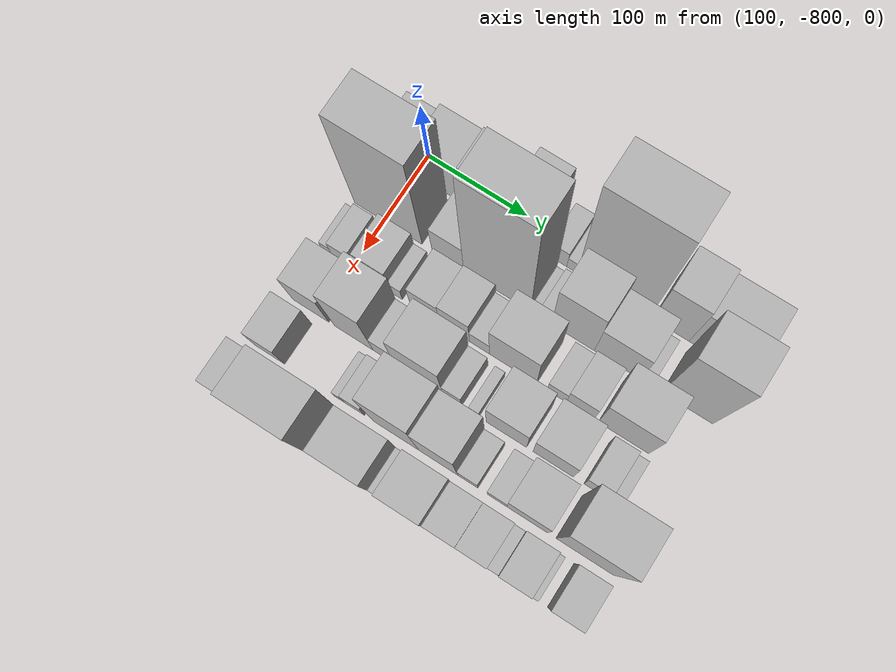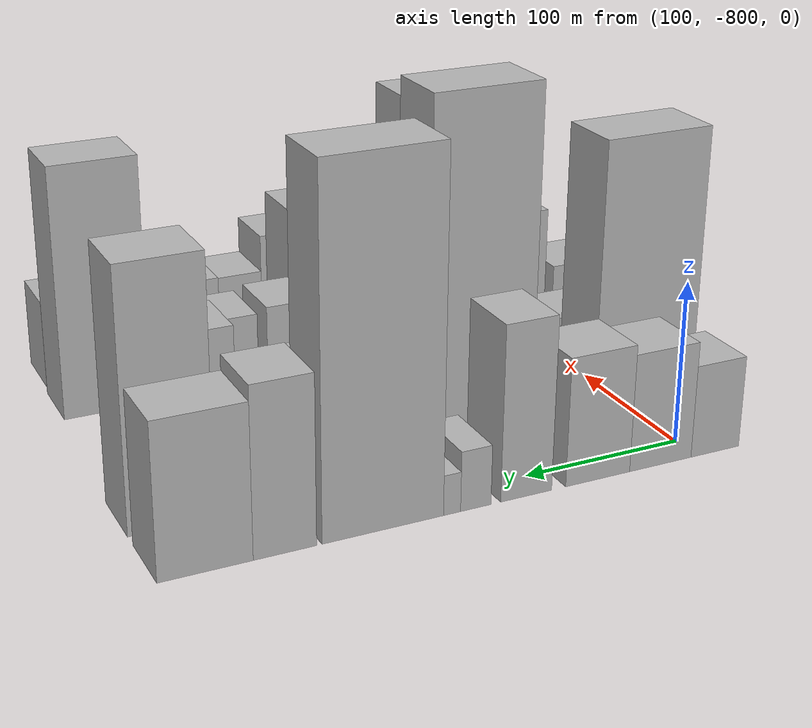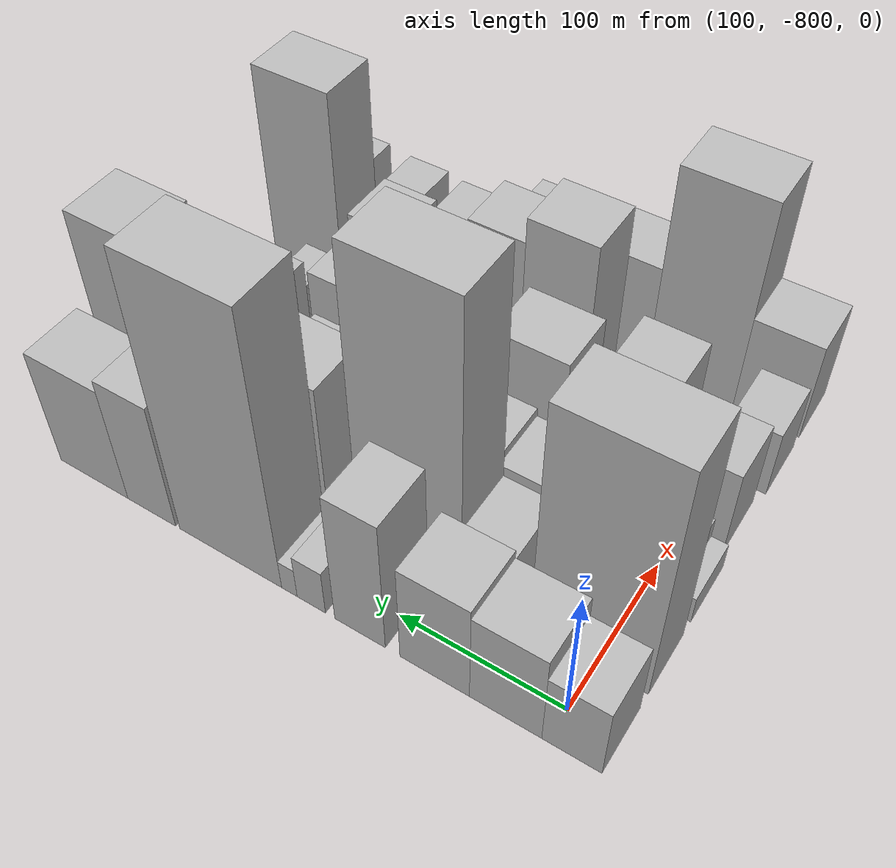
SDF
<sdf version="1.6">
 <world name="default">
  <model name="building_1">
   <static>1</static>
   <pose>100.0000 -813.4365 0 0.000000 0.000000 0.000000</pose>
   <link name="link">
    <pose>0 0 28.50 0 0 0</pose>
    <collision name="collision"><geometry><box><size>40.0000 33.1270 57.0000</size></box></geometry></collision>
    <visual name="visual">
     <cast_shadows>0</cast_shadows>
     <geometry><box><size>40.0000 33.1270 57.0000</size></box></geometry>
     <material>
      <script>
       <uri>model://HANNAS_wall/materials/scripts</uri>
       <uri>model://HANNAS_wall/materials/textures</uri>
       <name>vrc/HANNAS_wall</name>
      </script>
     </material>
    </visual>
   </link>
  </model>
  <model name="building_2">
   <static>1</static>
   <pose>100.0000 -776.1654 0 0.000000 0.000000 0.000000</pose>
   <link name="link">
    <pose>0 0 36.00 0 0 0</pose>
    <collision name="collision"><geometry><box><size>40.0000 41.4152 72.0000</size></box></geometry></collision>
    <visual name="visual">
     <cast_shadows>0</cast_shadows>
     <geometry><box><size>40.0000 41.4152 72.0000</size></box></geometry>
     <material>
      <script>
       <uri>model://HANNAS_wall/materials/scripts</uri>
       <uri>model://HANNAS_wall/materials/textures</uri>
       <name>vrc/HANNAS_wall</name>
      </script>
     </material>
    </visual>
   </link>
  </model>
  <model name="building_3">
   <static>1</static>
   <pose>100.0000 -734.5944 0 0.000000 0.000000 0.000000</pose>
   <link name="link">
    <pose>0 0 39.00 0 0 0</pose>
    <collision name="collision"><geometry><box><size>40.0000 41.7268 78.0000</size></box></geometry></collision>
    <visual name="visual">
     <cast_shadows>0</cast_shadows>
     <geometry><box><size>40.0000 41.7268 78.0000</size></box></geometry>
     <material>
      <script>
       <uri>model://HANNAS_wall/materials/scripts</uri>
       <uri>model://HANNAS_wall/materials/textures</uri>
       <name>vrc/HANNAS_wall</name>
      </script>
     </material>
    </visual>
   </link>
  </model>
  <model name="building_4">
   <static>1</static>
   <pose>100.0000 -688.7372 0 0.000000 0.000000 0.000000</pose>
   <link name="link">
    <pose>0 0 52.50 0 0 0</pose>
    <collision name="collision"><geometry><box><size>40.0000 31.9876 105.0000</size></box></geometry></collision>
    <visual name="visual">
     <cast_shadows>0</cast_shadows>
     <geometry><box><size>40.0000 31.9876 105.0000</size></box></geometry>
     <material>
      <script>
       <uri>model://HANNAS_wall/materials/scripts</uri>
       <uri>model://HANNAS_wall/materials/textures</uri>
       <name>vrc/HANNAS_wall</name>
      </script>
     </material>
    </visual>
   </link>
  </model>
  <model name="building_5">
   <static>1</static>
   <pose>100.0000 -657.4746 0 0.000000 0.000000 0.000000</pose>
   <link name="link">
    <pose>0 0 18.00 0 0 0</pose>
    <collision name="collision"><geometry><box><size>40.0000 18.5376 36.0000</size></box></geometry></collision>
    <visual name="visual">
     <cast_shadows>0</cast_shadows>
     <geometry><box><size>40.0000 18.5376 36.0000</size></box></geometry>
     <material>
      <script>
       <uri>model://HANNAS_wall/materials/scripts</uri>
       <uri>model://HANNAS_wall/materials/textures</uri>
       <name>vrc/HANNAS_wall</name>
      </script>
     </material>
    </visual>
   </link>
  </model>
  <model name="building_6">
   <static>1</static>
   <pose>100.0000 -643.0479 0 0.000000 0.000000 0.000000</pose>
   <link name="link">
    <pose>0 0 12.00 0 0 0</pose>
    <collision name="collision"><geometry><box><size>40.0000 10.3160 24.0000</size></box></geometry></collision>
    <visual name="visual">
     <cast_shadows>0</cast_shadows>
     <geometry><box><size>40.0000 10.3160 24.0000</size></box></geometry>
     <material>
      <script>
       <uri>model://HANNAS_wall/materials/scripts</uri>
       <uri>model://HANNAS_wall/materials/textures</uri>
       <name>vrc/HANNAS_wall</name>
      </script>
     </material>
    </visual>
   </link>
  </model>
  <model name="building_7">
   <static>1</static>
   <pose>100.0000 -602.5370 0 0.000000 0.000000 0.000000</pose>
   <link name="link">
    <pose>0 0 105.00 0 0 0</pose>
    <collision name="collision"><geometry><box><size>40.0000 70.7057 210.0000</size></box></geometry></collision>
    <visual name="visual">
     <cast_shadows>0</cast_shadows>
     <geometry><box><size>40.0000 70.7057 210.0000</size></box></geometry>
     <material>
      <script>
       <uri>model://HANNAS_wall/materials/scripts</uri>
       <uri>model://HANNAS_wall/materials/textures</uri>
       <name>vrc/HANNAS_wall</name>
      </script>
     </material>
    </visual>
   </link>
  </model>
  <model name="building_8">
   <static>1</static>
   <pose>100.0000 -546.6239 0 0.000000 0.000000 0.000000</pose>
   <link name="link">
    <pose>0 0 49.50 0 0 0</pose>
    <collision name="collision"><geometry><box><size>40.0000 35.1205 99.0000</size></box></geometry></collision>
    <visual name="visual">
     <cast_shadows>0</cast_shadows>
     <geometry><box><size>40.0000 35.1205 99.0000</size></box></geometry>
     <material>
      <script>
       <uri>model://HANNAS_wall/materials/scripts</uri>
       <uri>model://HANNAS_wall/materials/textures</uri>
       <name>vrc/HANNAS_wall</name>
      </script>
     </material>
    </visual>
   </link>
  </model>
  <model name="building_9">
   <static>1</static>
   <pose>100.0000 -503.3748 0 0.000000 0.000000 0.000000</pose>
   <link name="link">
    <pose>0 0 45.00 0 0 0</pose>
    <collision name="collision"><geometry><box><size>40.0000 51.3777 90.0000</size></box></geometry></collision>
    <visual name="visual">
     <cast_shadows>0</cast_shadows>
     <geometry><box><size>40.0000 51.3777 90.0000</size></box></geometry>
     <material>
      <script>
       <uri>model://HANNAS_wall/materials/scripts</uri>
       <uri>model://HANNAS_wall/materials/textures</uri>
       <name>vrc/HANNAS_wall</name>
      </script>
     </material>
    </visual>
   </link>
  </model>
  <model name="building_47">
   <static>1</static>
   <pose>149.0000 -795.7244 0 0.000000 0.000000 0.000000</pose>
   <link name="link">
    <pose>0 0 90.00 0 0 0</pose>
    <collision name="collision"><geometry><box><size>40.0000 68.5512 180.0000</size></box></geometry></collision>
    <visual name="visual">
     <cast_shadows>0</cast_shadows>
     <geometry><box><size>40.0000 68.5512 180.0000</size></box></geometry>
     <material>
      <script>
       <uri>model://HANNAS_wall/materials/scripts</uri>
       <uri>model://HANNAS_wall/materials/textures</uri>
       <name>vrc/HANNAS_wall</name>
      </script>
     </material>
    </visual>
   </link>
  </model>
  <model name="building_48">
   <static>1</static>
   <pose>149.0000 -735.6242 0 0.000000 0.000000 0.000000</pose>
   <link name="link">
    <pose>0 0 28.50 0 0 0</pose>
    <collision name="collision"><geometry><box><size>40.0000 31.6492 57.0000</size></box></geometry></collision>
    <visual name="visual">
     <cast_shadows>0</cast_shadows>
     <geometry><box><size>40.0000 31.6492 57.0000</size></box></geometry>
     <material>
      <script>
       <uri>model://HANNAS_wall/materials/scripts</uri>
       <uri>model://HANNAS_wall/materials/textures</uri>
       <name>vrc/HANNAS_wall</name>
      </script>
     </material>
    </visual>
   </link>
  </model>
  <model name="building_49">
   <static>1</static>
   <pose>149.0000 -686.6204 0 0.000000 0.000000 0.000000</pose>
   <link name="link">
    <pose>0 0 109.50 0 0 0</pose>
    <collision name="collision"><geometry><box><size>40.0000 66.3585 219.0000</size></box></geometry></collision>
    <visual name="visual">
     <cast_shadows>0</cast_shadows>
     <geometry><box><size>40.0000 66.3585 219.0000</size></box></geometry>
     <material>
      <script>
       <uri>model://HANNAS_wall/materials/scripts</uri>
       <uri>model://HANNAS_wall/materials/textures</uri>
       <name>vrc/HANNAS_wall</name>
      </script>
     </material>
    </visual>
   </link>
  </model>
  <model name="building_50">
   <static>1</static>
   <pose>149.0000 -649.4262 0 0.000000 0.000000 0.000000</pose>
   <link name="link">
    <pose>0 0 9.00 0 0 0</pose>
    <collision name="collision"><geometry><box><size>40.0000 8.0300 18.0000</size></box></geometry></collision>
    <visual name="visual">
     <cast_shadows>0</cast_shadows>
     <geometry><box><size>40.0000 8.0300 18.0000</size></box></geometry>
     <material>
      <script>
       <uri>model://HANNAS_wall/materials/scripts</uri>
       <uri>model://HANNAS_wall/materials/textures</uri>
       <name>vrc/HANNAS_wall</name>
      </script>
     </material>
    </visual>
   </link>
  </model>
  <model name="building_51">
   <static>1</static>
   <pose>149.0000 -639.1264 0 0.000000 0.000000 0.000000</pose>
   <link name="link">
    <pose>0 0 13.50 0 0 0</pose>
    <collision name="collision"><geometry><box><size>40.0000 12.5696 27.0000</size></box></geometry></collision>
    <visual name="visual">
     <cast_shadows>0</cast_shadows>
     <geometry><box><size>40.0000 12.5696 27.0000</size></box></geometry>
     <material>
      <script>
       <uri>model://HANNAS_wall/materials/scripts</uri>
       <uri>model://HANNAS_wall/materials/textures</uri>
       <name>vrc/HANNAS_wall</name>
      </script>
     </material>
    </visual>
   </link>
  </model>
  <model name="building_52">
   <static>1</static>
   <pose>149.0000 -611.9368 0 0.000000 0.000000 0.000000</pose>
   <link name="link">
    <pose>0 0 54.00 0 0 0</pose>
    <collision name="collision"><geometry><box><size>40.0000 41.8096 108.0000</size></box></geometry></collision>
    <visual name="visual">
     <cast_shadows>0</cast_shadows>
     <geometry><box><size>40.0000 41.8096 108.0000</size></box></geometry>
     <material>
      <script>
       <uri>model://HANNAS_wall/materials/scripts</uri>
       <uri>model://HANNAS_wall/materials/textures</uri>
       <name>vrc/HANNAS_wall</name>
      </script>
     </material>
    </visual>
   </link>
  </model>
  <model name="building_53">
   <static>1</static>
   <pose>149.0000 -568.7562 0 0.000000 0.000000 0.000000</pose>
   <link name="link">
    <pose>0 0 37.50 0 0 0</pose>
    <collision name="collision"><geometry><box><size>40.0000 44.5515 75.0000</size></box></geometry></collision>
    <visual name="visual">
     <cast_shadows>0</cast_shadows>
     <geometry><box><size>40.0000 44.5515 75.0000</size></box></geometry>
     <material>
      <script>
       <uri>model://HANNAS_wall/materials/scripts</uri>
       <uri>model://HANNAS_wall/materials/textures</uri>
       <name>vrc/HANNAS_wall</name>
      </script>
     </material>
    </visual>
   </link>
  </model>
  <model name="building_54">
   <static>1</static>
   <pose>149.0000 -541.3302 0 0.000000 0.000000 0.000000</pose>
   <link name="link">
    <pose>0 0 10.50 0 0 0</pose>
    <collision name="collision"><geometry><box><size>40.0000 10.3006 21.0000</size></box></geometry></collision>
    <visual name="visual">
     <cast_shadows>0</cast_shadows>
     <geometry><box><size>40.0000 10.3006 21.0000</size></box></geometry>
     <material>
      <script>
       <uri>model://HANNAS_wall/materials/scripts</uri>
       <uri>model://HANNAS_wall/materials/textures</uri>
       <name>vrc/HANNAS_wall</name>
      </script>
     </material>
    </visual>
   </link>
  </model>
  <model name="building_55">
   <static>1</static>
   <pose>149.0000 -501.8679 0 0.000000 0.000000 0.000000</pose>
   <link name="link">
    <pose>0 0 76.50 0 0 0</pose>
    <collision name="collision"><geometry><box><size>40.0000 48.6239 153.0000</size></box></geometry></collision>
    <visual name="visual">
     <cast_shadows>0</cast_shadows>
     <geometry><box><size>40.0000 48.6239 153.0000</size></box></geometry>
     <material>
      <script>
       <uri>model://HANNAS_wall/materials/scripts</uri>
       <uri>model://HANNAS_wall/materials/textures</uri>
       <name>vrc/HANNAS_wall</name>
      </script>
     </material>
    </visual>
   </link>
  </model>
  <model name="building_97">
   <static>1</static>
   <pose>198.0000 -824.8740 0 0.000000 0.000000 0.000000</pose>
   <link name="link">
    <pose>0 0 10.50 0 0 0</pose>
    <collision name="collision"><geometry><box><size>40.0000 10.2519 21.0000</size></box></geometry></collision>
    <visual name="visual">
     <cast_shadows>0</cast_shadows>
     <geometry><box><size>40.0000 10.2519 21.0000</size></box></geometry>
     <material>
      <script>
       <uri>model://HANNAS_wall/materials/scripts</uri>
       <uri>model://HANNAS_wall/materials/textures</uri>
       <name>vrc/HANNAS_wall</name>
      </script>
     </material>
    </visual>
   </link>
  </model>
  <model name="building_98">
   <static>1</static>
   <pose>198.0000 -810.1202 0 0.000000 0.000000 0.000000</pose>
   <link name="link">
    <pose>0 0 18.00 0 0 0</pose>
    <collision name="collision"><geometry><box><size>40.0000 19.2558 36.0000</size></box></geometry></collision>
    <visual name="visual">
     <cast_shadows>0</cast_shadows>
     <geometry><box><size>40.0000 19.2558 36.0000</size></box></geometry>
     <material>
      <script>
       <uri>model://HANNAS_wall/materials/scripts</uri>
       <uri>model://HANNAS_wall/materials/textures</uri>
       <name>vrc/HANNAS_wall</name>
      </script>
     </material>
    </visual>
   </link>
  </model>
  <model name="building_99">
   <static>1</static>
   <pose>198.0000 -796.7460 0 0.000000 0.000000 0.000000</pose>
   <link name="link">
    <pose>0 0 9.00 0 0 0</pose>
    <collision name="collision"><geometry><box><size>40.0000 7.4927 18.0000</size></box></geometry></collision>
    <visual name="visual">
     <cast_shadows>0</cast_shadows>
     <geometry><box><size>40.0000 7.4927 18.0000</size></box></geometry>
     <material>
      <script>
       <uri>model://HANNAS_wall/materials/scripts</uri>
       <uri>model://HANNAS_wall/materials/textures</uri>
       <name>vrc/HANNAS_wall</name>
      </script>
     </material>
    </visual>
   </link>
  </model>
  <model name="building_100">
   <static>1</static>
   <pose>198.0000 -777.3658 0 0.000000 0.000000 0.000000</pose>
   <link name="link">
    <pose>0 0 27.00 0 0 0</pose>
    <collision name="collision"><geometry><box><size>40.0000 31.2675 54.0000</size></box></geometry></collision>
    <visual name="visual">
     <cast_shadows>0</cast_shadows>
     <geometry><box><size>40.0000 31.2675 54.0000</size></box></geometry>
     <material>
      <script>
       <uri>model://HANNAS_wall/materials/scripts</uri>
       <uri>model://HANNAS_wall/materials/textures</uri>
       <name>vrc/HANNAS_wall</name>
      </script>
     </material>
    </visual>
   </link>
  </model>
  <model name="building_101">
   <static>1</static>
   <pose>198.0000 -755.3200 0 0.000000 0.000000 0.000000</pose>
   <link name="link">
    <pose>0 0 13.50 0 0 0</pose>
    <collision name="collision"><geometry><box><size>40.0000 12.8241 27.0000</size></box></geometry></collision>
    <visual name="visual">
     <cast_shadows>0</cast_shadows>
     <geometry><box><size>40.0000 12.8241 27.0000</size></box></geometry>
     <material>
      <script>
       <uri>model://HANNAS_wall/materials/scripts</uri>
       <uri>model://HANNAS_wall/materials/textures</uri>
       <name>vrc/HANNAS_wall</name>
      </script>
     </material>
    </visual>
   </link>
  </model>
  <model name="building_102">
   <static>1</static>
   <pose>198.0000 -726.4056 0 0.000000 0.000000 0.000000</pose>
   <link name="link">
    <pose>0 0 25.50 0 0 0</pose>
    <collision name="collision"><geometry><box><size>40.0000 29.0049 51.0000</size></box></geometry></collision>
    <visual name="visual">
     <cast_shadows>0</cast_shadows>
     <geometry><box><size>40.0000 29.0049 51.0000</size></box></geometry>
     <material>
      <script>
       <uri>model://HANNAS_wall/materials/scripts</uri>
       <uri>model://HANNAS_wall/materials/textures</uri>
       <name>vrc/HANNAS_wall</name>
      </script>
     </material>
    </visual>
   </link>
  </model>
  <model name="building_103">
   <static>1</static>
   <pose>198.0000 -697.0899 0 0.000000 0.000000 0.000000</pose>
   <link name="link">
    <pose>0 0 28.50 0 0 0</pose>
    <collision name="collision"><geometry><box><size>40.0000 29.6264 57.0000</size></box></geometry></collision>
    <visual name="visual">
     <cast_shadows>0</cast_shadows>
     <geometry><box><size>40.0000 29.6264 57.0000</size></box></geometry>
     <material>
      <script>
       <uri>model://HANNAS_wall/materials/scripts</uri>
       <uri>model://HANNAS_wall/materials/textures</uri>
       <name>vrc/HANNAS_wall</name>
      </script>
     </material>
    </visual>
   </link>
  </model>
  <model name="building_104">
   <static>1</static>
   <pose>198.0000 -672.5889 0 0.000000 0.000000 0.000000</pose>
   <link name="link">
    <pose>0 0 16.50 0 0 0</pose>
    <collision name="collision"><geometry><box><size>40.0000 19.3755 33.0000</size></box></geometry></collision>
    <visual name="visual">
     <cast_shadows>0</cast_shadows>
     <geometry><box><size>40.0000 19.3755 33.0000</size></box></geometry>
     <material>
      <script>
       <uri>model://HANNAS_wall/materials/scripts</uri>
       <uri>model://HANNAS_wall/materials/textures</uri>
       <name>vrc/HANNAS_wall</name>
      </script>
     </material>
    </visual>
   </link>
  </model>
  <model name="building_105">
   <static>1</static>
   <pose>198.0000 -639.7489 0 0.000000 0.000000 0.000000</pose>
   <link name="link">
    <pose>0 0 42.00 0 0 0</pose>
    <collision name="collision"><geometry><box><size>40.0000 46.3046 84.0000</size></box></geometry></collision>
    <visual name="visual">
     <cast_shadows>0</cast_shadows>
     <geometry><box><size>40.0000 46.3046 84.0000</size></box></geometry>
     <material>
      <script>
       <uri>model://HANNAS_wall/materials/scripts</uri>
       <uri>model://HANNAS_wall/materials/textures</uri>
       <name>vrc/HANNAS_wall</name>
      </script>
     </material>
    </visual>
   </link>
  </model>
  <model name="building_106">
   <static>1</static>
   <pose>198.0000 -597.2656 0 0.000000 0.000000 0.000000</pose>
   <link name="link">
    <pose>0 0 16.50 0 0 0</pose>
    <collision name="collision"><geometry><box><size>40.0000 18.6619 33.0000</size></box></geometry></collision>
    <visual name="visual">
     <cast_shadows>0</cast_shadows>
     <geometry><box><size>40.0000 18.6619 33.0000</size></box></geometry>
     <material>
      <script>
       <uri>model://HANNAS_wall/materials/scripts</uri>
       <uri>model://HANNAS_wall/materials/textures</uri>
       <name>vrc/HANNAS_wall</name>
      </script>
     </material>
    </visual>
   </link>
  </model>
  <model name="building_107">
   <static>1</static>
   <pose>198.0000 -574.6340 0 0.000000 0.000000 0.000000</pose>
   <link name="link">
    <pose>0 0 24.00 0 0 0</pose>
    <collision name="collision"><geometry><box><size>40.0000 26.6013 48.0000</size></box></geometry></collision>
    <visual name="visual">
     <cast_shadows>0</cast_shadows>
     <geometry><box><size>40.0000 26.6013 48.0000</size></box></geometry>
     <material>
      <script>
       <uri>model://HANNAS_wall/materials/scripts</uri>
       <uri>model://HANNAS_wall/materials/textures</uri>
       <name>vrc/HANNAS_wall</name>
      </script>
     </material>
    </visual>
   </link>
  </model>
  <model name="building_108">
   <static>1</static>
   <pose>198.0000 -533.3000 0 0.000000 0.000000 0.000000</pose>
   <link name="link">
    <pose>0 0 43.50 0 0 0</pose>
    <collision name="collision"><geometry><box><size>40.0000 48.0668 87.0000</size></box></geometry></collision>
    <visual name="visual">
     <cast_shadows>0</cast_shadows>
     <geometry><box><size>40.0000 48.0668 87.0000</size></box></geometry>
     <material>
      <script>
       <uri>model://HANNAS_wall/materials/scripts</uri>
       <uri>model://HANNAS_wall/materials/textures</uri>
       <name>vrc/HANNAS_wall</name>
      </script>
     </material>
    </visual>
   </link>
  </model>
  <model name="building_149">
   <static>1</static>
   <pose>247.0000 -808.0110 0 0.000000 0.000000 0.000000</pose>
   <link name="link">
    <pose>0 0 33.00 0 0 0</pose>
    <collision name="collision"><geometry><box><size>40.0000 35.9780 66.0000</size></box></geometry></collision>
    <visual name="visual">
     <cast_shadows>0</cast_shadows>
     <geometry><box><size>40.0000 35.9780 66.0000</size></box></geometry>
     <material>
      <script>
       <uri>model://HANNAS_wall/materials/scripts</uri>
       <uri>model://HANNAS_wall/materials/textures</uri>
       <name>vrc/HANNAS_wall</name>
      </script>
     </material>
    </visual>
   </link>
  </model>
  <model name="building_150">
   <static>1</static>
   <pose>247.0000 -764.7420 0 0.000000 0.000000 0.000000</pose>
   <link name="link">
    <pose>0 0 52.50 0 0 0</pose>
    <collision name="collision"><geometry><box><size>40.0000 38.5599 105.0000</size></box></geometry></collision>
    <visual name="visual">
     <cast_shadows>0</cast_shadows>
     <geometry><box><size>40.0000 38.5599 105.0000</size></box></geometry>
     <material>
      <script>
       <uri>model://HANNAS_wall/materials/scripts</uri>
       <uri>model://HANNAS_wall/materials/textures</uri>
       <name>vrc/HANNAS_wall</name>
      </script>
     </material>
    </visual>
   </link>
  </model>
  <model name="building_151">
   <static>1</static>
   <pose>247.0000 -734.9108 0 0.000000 0.000000 0.000000</pose>
   <link name="link">
    <pose>0 0 21.00 0 0 0</pose>
    <collision name="collision"><geometry><box><size>40.0000 21.1025 42.0000</size></box></geometry></collision>
    <visual name="visual">
     <cast_shadows>0</cast_shadows>
     <geometry><box><size>40.0000 21.1025 42.0000</size></box></geometry>
     <material>
      <script>
       <uri>model://HANNAS_wall/materials/scripts</uri>
       <uri>model://HANNAS_wall/materials/textures</uri>
       <name>vrc/HANNAS_wall</name>
      </script>
     </material>
    </visual>
   </link>
  </model>
  <model name="building_152">
   <static>1</static>
   <pose>247.0000 -700.5825 0 0.000000 0.000000 0.000000</pose>
   <link name="link">
    <pose>0 0 45.00 0 0 0</pose>
    <collision name="collision"><geometry><box><size>40.0000 47.5540 90.0000</size></box></geometry></collision>
    <visual name="visual">
     <cast_shadows>0</cast_shadows>
     <geometry><box><size>40.0000 47.5540 90.0000</size></box></geometry>
     <material>
      <script>
       <uri>model://HANNAS_wall/materials/scripts</uri>
       <uri>model://HANNAS_wall/materials/textures</uri>
       <name>vrc/HANNAS_wall</name>
      </script>
     </material>
    </visual>
   </link>
  </model>
  <model name="building_153">
   <static>1</static>
   <pose>247.0000 -667.6873 0 0.000000 0.000000 0.000000</pose>
   <link name="link">
    <pose>0 0 18.00 0 0 0</pose>
    <collision name="collision"><geometry><box><size>40.0000 18.2366 36.0000</size></box></geometry></collision>
    <visual name="visual">
     <cast_shadows>0</cast_shadows>
     <geometry><box><size>40.0000 18.2366 36.0000</size></box></geometry>
     <material>
      <script>
       <uri>model://HANNAS_wall/materials/scripts</uri>
       <uri>model://HANNAS_wall/materials/textures</uri>
       <name>vrc/HANNAS_wall</name>
      </script>
     </material>
    </visual>
   </link>
  </model>
  <model name="building_154">
   <static>1</static>
   <pose>247.0000 -646.6840 0 0.000000 0.000000 0.000000</pose>
   <link name="link">
    <pose>0 0 10.50 0 0 0</pose>
    <collision name="collision"><geometry><box><size>40.0000 9.7700 21.0000</size></box></geometry></collision>
    <visual name="visual">
     <cast_shadows>0</cast_shadows>
     <geometry><box><size>40.0000 9.7700 21.0000</size></box></geometry>
     <material>
      <script>
       <uri>model://HANNAS_wall/materials/scripts</uri>
       <uri>model://HANNAS_wall/materials/textures</uri>
       <name>vrc/HANNAS_wall</name>
      </script>
     </material>
    </visual>
   </link>
  </model>
  <model name="building_155">
   <static>1</static>
   <pose>247.0000 -615.2187 0 0.000000 0.000000 0.000000</pose>
   <link name="link">
    <pose>0 0 36.00 0 0 0</pose>
    <collision name="collision"><geometry><box><size>40.0000 39.1604 72.0000</size></box></geometry></collision>
    <visual name="visual">
     <cast_shadows>0</cast_shadows>
     <geometry><box><size>40.0000 39.1604 72.0000</size></box></geometry>
     <material>
      <script>
       <uri>model://HANNAS_wall/materials/scripts</uri>
       <uri>model://HANNAS_wall/materials/textures</uri>
       <name>vrc/HANNAS_wall</name>
      </script>
     </material>
    </visual>
   </link>
  </model>
  <model name="building_156">
   <static>1</static>
   <pose>247.0000 -570.3108 0 0.000000 0.000000 0.000000</pose>
   <link name="link">
    <pose>0 0 34.50 0 0 0</pose>
    <collision name="collision"><geometry><box><size>40.0000 38.6555 69.0000</size></box></geometry></collision>
    <visual name="visual">
     <cast_shadows>0</cast_shadows>
     <geometry><box><size>40.0000 38.6555 69.0000</size></box></geometry>
     <material>
      <script>
       <uri>model://HANNAS_wall/materials/scripts</uri>
       <uri>model://HANNAS_wall/materials/textures</uri>
       <name>vrc/HANNAS_wall</name>
      </script>
     </material>
    </visual>
   </link>
  </model>
  <model name="building_157">
   <static>1</static>
   <pose>247.0000 -529.6225 0 0.000000 0.000000 0.000000</pose>
   <link name="link">
    <pose>0 0 22.50 0 0 0</pose>
    <collision name="collision"><geometry><box><size>40.0000 22.7210 45.0000</size></box></geometry></collision>
    <visual name="visual">
     <cast_shadows>0</cast_shadows>
     <geometry><box><size>40.0000 22.7210 45.0000</size></box></geometry>
     <material>
      <script>
       <uri>model://HANNAS_wall/materials/scripts</uri>
       <uri>model://HANNAS_wall/materials/textures</uri>
       <name>vrc/HANNAS_wall</name>
      </script>
     </material>
    </visual>
   </link>
  </model>
  <model name="building_158">
   <static>1</static>
   <pose>247.0000 -512.7052 0 0.000000 0.000000 0.000000</pose>
   <link name="link">
    <pose>0 0 13.50 0 0 0</pose>
    <collision name="collision"><geometry><box><size>40.0000 11.1136 27.0000</size></box></geometry></collision>
    <visual name="visual">
     <cast_shadows>0</cast_shadows>
     <geometry><box><size>40.0000 11.1136 27.0000</size></box></geometry>
     <material>
      <script>
       <uri>model://HANNAS_wall/materials/scripts</uri>
       <uri>model://HANNAS_wall/materials/textures</uri>
       <name>vrc/HANNAS_wall</name>
      </script>
     </material>
    </visual>
   </link>
  </model>
  <model name="building_200">
   <static>1</static>
   <pose>296.0000 -815.3998 0 0.000000 0.000000 0.000000</pose>
   <link name="link">
    <pose>0 0 25.50 0 0 0</pose>
    <collision name="collision"><geometry><box><size>40.0000 29.2003 51.0000</size></box></geometry></collision>
    <visual name="visual">
     <cast_shadows>0</cast_shadows>
     <geometry><box><size>40.0000 29.2003 51.0000</size></box></geometry>
     <material>
      <script>
       <uri>model://HANNAS_wall/materials/scripts</uri>
       <uri>model://HANNAS_wall/materials/textures</uri>
       <name>vrc/HANNAS_wall</name>
      </script>
     </material>
    </visual>
   </link>
  </model>
  <model name="building_201">
   <static>1</static>
   <pose>296.0000 -745.9321 0 0.000000 0.000000 0.000000</pose>
   <link name="link">
    <pose>0 0 10.50 0 0 0</pose>
    <collision name="collision"><geometry><box><size>40.0000 9.9117 21.0000</size></box></geometry></collision>
    <visual name="visual">
     <cast_shadows>0</cast_shadows>
     <geometry><box><size>40.0000 9.9117 21.0000</size></box></geometry>
     <material>
      <script>
       <uri>model://HANNAS_wall/materials/scripts</uri>
       <uri>model://HANNAS_wall/materials/textures</uri>
       <name>vrc/HANNAS_wall</name>
      </script>
     </material>
    </visual>
   </link>
  </model>
  <model name="building_202">
   <static>1</static>
   <pose>296.0000 -731.1963 0 0.000000 0.000000 0.000000</pose>
   <link name="link">
    <pose>0 0 18.00 0 0 0</pose>
    <collision name="collision"><geometry><box><size>40.0000 19.5598 36.0000</size></box></geometry></collision>
    <visual name="visual">
     <cast_shadows>0</cast_shadows>
     <geometry><box><size>40.0000 19.5598 36.0000</size></box></geometry>
     <material>
      <script>
       <uri>model://HANNAS_wall/materials/scripts</uri>
       <uri>model://HANNAS_wall/materials/textures</uri>
       <name>vrc/HANNAS_wall</name>
      </script>
     </material>
    </visual>
   </link>
  </model>
  <model name="building_203">
   <static>1</static>
   <pose>296.0000 -690.1163 0 0.000000 0.000000 0.000000</pose>
   <link name="link">
    <pose>0 0 64.50 0 0 0</pose>
    <collision name="collision"><geometry><box><size>40.0000 44.6002 129.0000</size></box></geometry></collision>
    <visual name="visual">
     <cast_shadows>0</cast_shadows>
     <geometry><box><size>40.0000 44.6002 129.0000</size></box></geometry>
     <material>
      <script>
       <uri>model://HANNAS_wall/materials/scripts</uri>
       <uri>model://HANNAS_wall/materials/textures</uri>
       <name>vrc/HANNAS_wall</name>
      </script>
     </material>
    </visual>
   </link>
  </model>
  <model name="building_204">
   <static>1</static>
   <pose>296.0000 -649.0827 0 0.000000 0.000000 0.000000</pose>
   <link name="link">
    <pose>0 0 55.50 0 0 0</pose>
    <collision name="collision"><geometry><box><size>40.0000 37.4670 111.0000</size></box></geometry></collision>
    <visual name="visual">
     <cast_shadows>0</cast_shadows>
     <geometry><box><size>40.0000 37.4670 111.0000</size></box></geometry>
     <material>
      <script>
       <uri>model://HANNAS_wall/materials/scripts</uri>
       <uri>model://HANNAS_wall/materials/textures</uri>
       <name>vrc/HANNAS_wall</name>
      </script>
     </material>
    </visual>
   </link>
  </model>
  <model name="building_205">
   <static>1</static>
   <pose>296.0000 -620.8200 0 0.000000 0.000000 0.000000</pose>
   <link name="link">
    <pose>0 0 18.00 0 0 0</pose>
    <collision name="collision"><geometry><box><size>40.0000 19.0584 36.0000</size></box></geometry></collision>
    <visual name="visual">
     <cast_shadows>0</cast_shadows>
     <geometry><box><size>40.0000 19.0584 36.0000</size></box></geometry>
     <material>
      <script>
       <uri>model://HANNAS_wall/materials/scripts</uri>
       <uri>model://HANNAS_wall/materials/textures</uri>
       <name>vrc/HANNAS_wall</name>
      </script>
     </material>
    </visual>
   </link>
  </model>
  <model name="building_206">
   <static>1</static>
   <pose>296.0000 -592.8804 0 0.000000 0.000000 0.000000</pose>
   <link name="link">
    <pose>0 0 16.50 0 0 0</pose>
    <collision name="collision"><geometry><box><size>40.0000 18.8207 33.0000</size></box></geometry></collision>
    <visual name="visual">
     <cast_shadows>0</cast_shadows>
     <geometry><box><size>40.0000 18.8207 33.0000</size></box></geometry>
     <material>
      <script>
       <uri>model://HANNAS_wall/materials/scripts</uri>
       <uri>model://HANNAS_wall/materials/textures</uri>
       <name>vrc/HANNAS_wall</name>
      </script>
     </material>
    </visual>
   </link>
  </model>
  <model name="building_207">
   <static>1</static>
   <pose>296.0000 -564.3047 0 0.000000 0.000000 0.000000</pose>
   <link name="link">
    <pose>0 0 37.50 0 0 0</pose>
    <collision name="collision"><geometry><box><size>40.0000 38.3308 75.0000</size></box></geometry></collision>
    <visual name="visual">
     <cast_shadows>0</cast_shadows>
     <geometry><box><size>40.0000 38.3308 75.0000</size></box></geometry>
     <material>
      <script>
       <uri>model://HANNAS_wall/materials/scripts</uri>
       <uri>model://HANNAS_wall/materials/textures</uri>
       <name>vrc/HANNAS_wall</name>
      </script>
     </material>
    </visual>
   </link>
  </model>
  <model name="building_208">
   <static>1</static>
   <pose>296.0000 -510.1896 0 0.000000 0.000000 0.000000</pose>
   <link name="link">
    <pose>0 0 79.50 0 0 0</pose>
    <collision name="collision"><geometry><box><size>40.0000 53.8994 159.0000</size></box></geometry></collision>
    <visual name="visual">
     <cast_shadows>0</cast_shadows>
     <geometry><box><size>40.0000 53.8994 159.0000</size></box></geometry>
     <material>
      <script>
       <uri>model://HANNAS_wall/materials/scripts</uri>
       <uri>model://HANNAS_wall/materials/textures</uri>
       <name>vrc/HANNAS_wall</name>
      </script>
     </material>
    </visual>
   </link>
  </model>
  <model name="building_249">
   <static>1</static>
   <pose>345.0000 -808.8272 0 0.000000 0.000000 0.000000</pose>
   <link name="link">
    <pose>0 0 37.50 0 0 0</pose>
    <collision name="collision"><geometry><box><size>40.0000 42.3456 75.0000</size></box></geometry></collision>
    <visual name="visual">
     <cast_shadows>0</cast_shadows>
     <geometry><box><size>40.0000 42.3456 75.0000</size></box></geometry>
     <material>
      <script>
       <uri>model://HANNAS_wall/materials/scripts</uri>
       <uri>model://HANNAS_wall/materials/textures</uri>
       <name>vrc/HANNAS_wall</name>
      </script>
     </material>
    </visual>
   </link>
  </model>
  <model name="building_250">
   <static>1</static>
   <pose>345.0000 -758.9594 0 0.000000 0.000000 0.000000</pose>
   <link name="link">
    <pose>0 0 79.50 0 0 0</pose>
    <collision name="collision"><geometry><box><size>40.0000 57.3899 159.0000</size></box></geometry></collision>
    <visual name="visual">
     <cast_shadows>0</cast_shadows>
     <geometry><box><size>40.0000 57.3899 159.0000</size></box></geometry>
     <material>
      <script>
       <uri>model://HANNAS_wall/materials/scripts</uri>
       <uri>model://HANNAS_wall/materials/textures</uri>
       <name>vrc/HANNAS_wall</name>
      </script>
     </material>
    </visual>
   </link>
  </model>
  <model name="building_251">
   <static>1</static>
   <pose>345.0000 -706.2376 0 0.000000 0.000000 0.000000</pose>
   <link name="link">
    <pose>0 0 42.00 0 0 0</pose>
    <collision name="collision"><geometry><box><size>40.0000 48.0537 84.0000</size></box></geometry></collision>
    <visual name="visual">
     <cast_shadows>0</cast_shadows>
     <geometry><box><size>40.0000 48.0537 84.0000</size></box></geometry>
     <material>
      <script>
       <uri>model://HANNAS_wall/materials/scripts</uri>
       <uri>model://HANNAS_wall/materials/textures</uri>
       <name>vrc/HANNAS_wall</name>
      </script>
     </material>
    </visual>
   </link>
  </model>
  <model name="building_252">
   <static>1</static>
   <pose>345.0000 -676.4467 0 0.000000 0.000000 0.000000</pose>
   <link name="link">
    <pose>0 0 13.50 0 0 0</pose>
    <collision name="collision"><geometry><box><size>40.0000 11.5282 27.0000</size></box></geometry></collision>
    <visual name="visual">
     <cast_shadows>0</cast_shadows>
     <geometry><box><size>40.0000 11.5282 27.0000</size></box></geometry>
     <material>
      <script>
       <uri>model://HANNAS_wall/materials/scripts</uri>
       <uri>model://HANNAS_wall/materials/textures</uri>
       <name>vrc/HANNAS_wall</name>
      </script>
     </material>
    </visual>
   </link>
  </model>
  <model name="building_253">
   <static>1</static>
   <pose>345.0000 -650.2221 0 0.000000 0.000000 0.000000</pose>
   <link name="link">
    <pose>0 0 39.00 0 0 0</pose>
    <collision name="collision"><geometry><box><size>40.0000 40.9210 78.0000</size></box></geometry></collision>
    <visual name="visual">
     <cast_shadows>0</cast_shadows>
     <geometry><box><size>40.0000 40.9210 78.0000</size></box></geometry>
     <material>
      <script>
       <uri>model://HANNAS_wall/materials/scripts</uri>
       <uri>model://HANNAS_wall/materials/textures</uri>
       <name>vrc/HANNAS_wall</name>
      </script>
     </material>
    </visual>
   </link>
  </model>
  <model name="building_254">
   <static>1</static>
   <pose>345.0000 -614.8155 0 0.000000 0.000000 0.000000</pose>
   <link name="link">
    <pose>0 0 27.00 0 0 0</pose>
    <collision name="collision"><geometry><box><size>40.0000 29.8922 54.0000</size></box></geometry></collision>
    <visual name="visual">
     <cast_shadows>0</cast_shadows>
     <geometry><box><size>40.0000 29.8922 54.0000</size></box></geometry>
     <material>
      <script>
       <uri>model://HANNAS_wall/materials/scripts</uri>
       <uri>model://HANNAS_wall/materials/textures</uri>
       <name>vrc/HANNAS_wall</name>
      </script>
     </material>
    </visual>
   </link>
  </model>
  <model name="building_255">
   <static>1</static>
   <pose>345.0000 -585.5082 0 0.000000 0.000000 0.000000</pose>
   <link name="link">
    <pose>0 0 25.50 0 0 0</pose>
    <collision name="collision"><geometry><box><size>40.0000 28.7224 51.0000</size></box></geometry></collision>
    <visual name="visual">
     <cast_shadows>0</cast_shadows>
     <geometry><box><size>40.0000 28.7224 51.0000</size></box></geometry>
     <material>
      <script>
       <uri>model://HANNAS_wall/materials/scripts</uri>
       <uri>model://HANNAS_wall/materials/textures</uri>
       <name>vrc/HANNAS_wall</name>
      </script>
     </material>
    </visual>
   </link>
  </model>
  <model name="building_256">
   <static>1</static>
   <pose>345.0000 -565.9060 0 0.000000 0.000000 0.000000</pose>
   <link name="link">
    <pose>0 0 12.00 0 0 0</pose>
    <collision name="collision"><geometry><box><size>40.0000 10.4819 24.0000</size></box></geometry></collision>
    <visual name="visual">
     <cast_shadows>0</cast_shadows>
     <geometry><box><size>40.0000 10.4819 24.0000</size></box></geometry>
     <material>
      <script>
       <uri>model://HANNAS_wall/materials/scripts</uri>
       <uri>model://HANNAS_wall/materials/textures</uri>
       <name>vrc/HANNAS_wall</name>
      </script>
     </material>
    </visual>
   </link>
  </model>
  <model name="building_257">
   <static>1</static>
   <pose>345.0000 -545.7456 0 0.000000 0.000000 0.000000</pose>
   <link name="link">
    <pose>0 0 27.00 0 0 0</pose>
    <collision name="collision"><geometry><box><size>40.0000 29.8390 54.0000</size></box></geometry></collision>
    <visual name="visual">
     <cast_shadows>0</cast_shadows>
     <geometry><box><size>40.0000 29.8390 54.0000</size></box></geometry>
     <material>
      <script>
       <uri>model://HANNAS_wall/materials/scripts</uri>
       <uri>model://HANNAS_wall/materials/textures</uri>
       <name>vrc/HANNAS_wall</name>
      </script>
     </material>
    </visual>
   </link>
  </model>
  <model name="building_258">
   <static>1</static>
   <pose>345.0000 -527.1932 0 0.000000 0.000000 0.000000</pose>
   <link name="link">
    <pose>0 0 7.50 0 0 0</pose>
    <collision name="collision"><geometry><box><size>40.0000 7.2657 15.0000</size></box></geometry></collision>
    <visual name="visual">
     <cast_shadows>0</cast_shadows>
     <geometry><box><size>40.0000 7.2657 15.0000</size></box></geometry>
     <material>
      <script>
       <uri>model://HANNAS_wall/materials/scripts</uri>
       <uri>model://HANNAS_wall/materials/textures</uri>
       <name>vrc/HANNAS_wall</name>
      </script>
     </material>
    </visual>
   </link>
  </model>
  <model name="building_259">
   <static>1</static>
   <pose>345.0000 -499.8573 0 0.000000 0.000000 0.000000</pose>
   <link name="link">
    <pose>0 0 28.50 0 0 0</pose>
    <collision name="collision"><geometry><box><size>40.0000 29.4061 57.0000</size></box></geometry></collision>
    <visual name="visual">
     <cast_shadows>0</cast_shadows>
     <geometry><box><size>40.0000 29.4061 57.0000</size></box></geometry>
     <material>
      <script>
       <uri>model://HANNAS_wall/materials/scripts</uri>
       <uri>model://HANNAS_wall/materials/textures</uri>
       <name>vrc/HANNAS_wall</name>
      </script>
     </material>
    </visual>
   </link>
  </model>
 </world>
</sdf>
